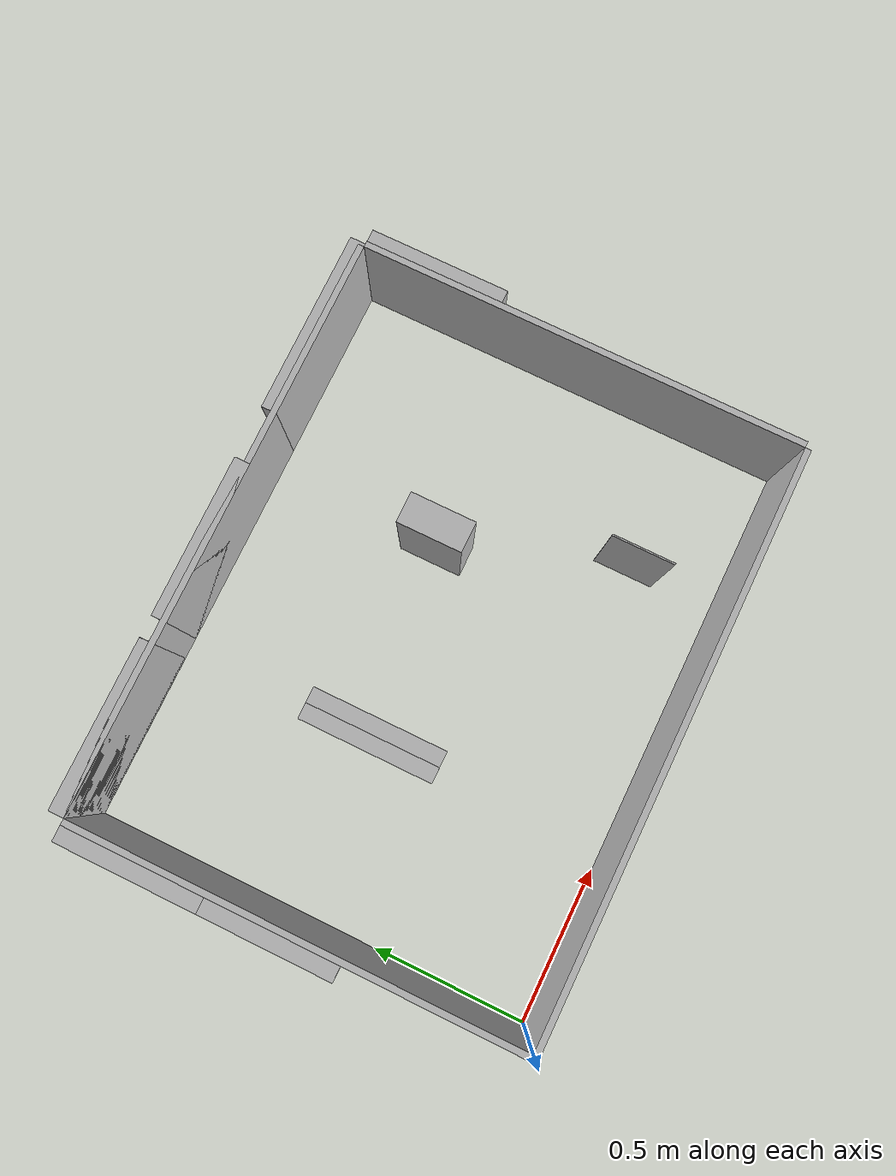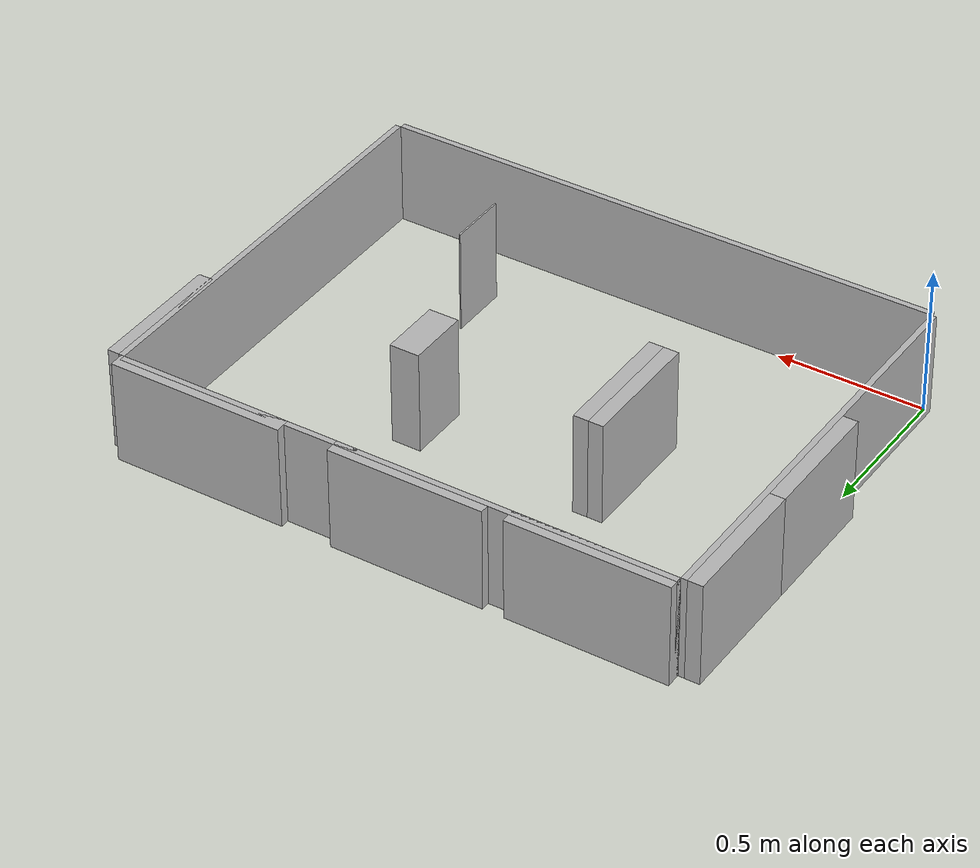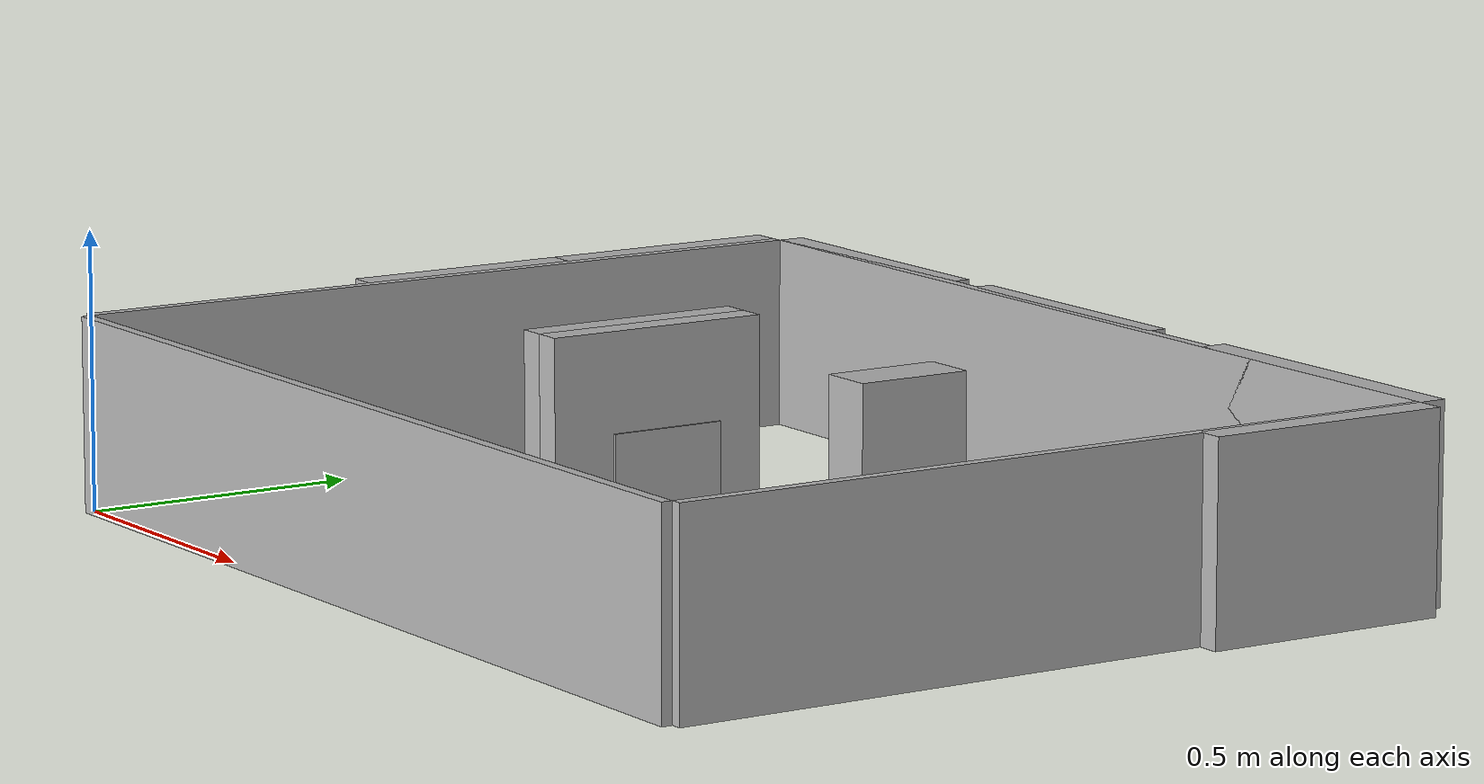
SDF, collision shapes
<?xml version="1.0" ?>
<sdf version="1.8">
  <model name="shop">
    <static>true</static>
    <link name="link">
      <pose>0 0 0 0 0 0</pose>
      <visual name="visual">
        <geometry>
          <mesh>
            <uri>meshes/shop.dae</uri>
            <scale>1.044444 1.021277 1</scale>
          </mesh>
        </geometry>
      </visual>

      <!-- ===== PERIMETER WALLS ===== -->
      <!-- South wall: Y = -0.01, thickness 0.02, length 1.88 -->
      <collision name="wall_south">
        <pose>0.94 -0.01 0.175 0 0 0</pose>
        <geometry>
          <box>
            <size>1.88 0.02 0.35</size>
          </box>
        </geometry>
      </collision>

      <!-- North wall: Y = 1.45, thickness 0.02, length 1.88 -->
      <collision name="wall_north">
        <pose>0.94 1.45 0.175 0 0 0</pose>
        <geometry>
          <box>
            <size>1.88 0.02 0.35</size>
          </box>
        </geometry>
      </collision>

      <!-- West wall: X = -0.01, thickness 0.02, height 1.44 -->
      <collision name="wall_west">
        <pose>-0.01 0.72 0.175 0 0 0</pose>
        <geometry>
          <box>
            <size>0.02 1.44 0.35</size>
          </box>
        </geometry>
      </collision>

      <!-- East wall: X = 1.89, thickness 0.02, height 1.44 -->
      <collision name="wall_east">
        <pose>1.89 0.72 0.175 0 0 0</pose>
        <geometry>
          <box>
            <size>0.02 1.44 0.35</size>
          </box>
        </geometry>
      </collision>

      <!-- ===== NORTH WALL PRODUCTS ===== -->
      <!-- North wall outer face Y=1.46, sections protrude outward (north) -->
      <!-- Seafood: 0~54cm, depth 5cm -->
      <collision name="section_seafood">
        <pose>0.27 1.465 0.175 0 0 0</pose>
        <geometry>
          <box>
            <size>0.54 0.05 0.35</size>
          </box>
        </geometry>
      </collision>

      <!-- Meat: 61~113cm, depth 5cm -->
      <collision name="section_meat">
        <pose>0.87 1.465 0.175 0 0 0</pose>
        <geometry>
          <box>
            <size>0.52 0.05 0.35</size>
          </box>
        </geometry>
      </collision>

      <!-- Vegetable: 130~189cm, depth 5cm -->
      <collision name="section_vegetable">
        <pose>1.595 1.465 0.175 0 0 0</pose>
        <geometry>
          <box>
            <size>0.59 0.05 0.35</size>
          </box>
        </geometry>
      </collision>

      <!-- ===== WEST WALL PRODUCTS ===== -->
      <!-- West wall outer face X=-0.02, sections protrude outward (west) -->
      <!-- Snacks: Y=99~144cm, depth 5cm -->
      <collision name="section_snacks">
        <pose>-0.045 1.215 0.175 0 0 0</pose>
        <geometry>
          <box>
            <size>0.05 0.45 0.35</size>
          </box>
        </geometry>
      </collision>

      <!-- Electronics: Y=57~99cm, depth 5cm -->
      <collision name="section_electronics">
        <pose>-0.045 0.78 0.175 0 0 0</pose>
        <geometry>
          <box>
            <size>0.05 0.42 0.35</size>
          </box>
        </geometry>
      </collision>

      <!-- ===== EAST WALL PRODUCTS ===== -->
      <!-- Restroom: Y=99~144cm, depth 5cm -->
      <collision name="section_restroom">
        <pose>1.915 1.215 0.175 0 0 0</pose>
        <geometry>
          <box>
            <size>0.05 0.45 0.35</size>
          </box>
        </geometry>
      </collision>

      <!-- ===== INTERIOR STRUCTURES ===== -->
      <!-- Divider: X=143.75~144.25cm, Y=20~40cm, thickness 0.5cm -->
      <collision name="divider">
        <pose>1.3975 0.30 0.175 0 0 0</pose>
        <geometry>
          <box>
            <size>0.005 0.20 0.35</size>
          </box>
        </geometry>
      </collision>

      <!-- Bread section: X=53~58cm, Y=56~98cm -->
      <collision name="section_bread">
        <pose>0.555 0.77 0.175 0 0 0</pose>
        <geometry>
          <box>
            <size>0.05 0.42 0.35</size>
          </box>
        </geometry>
      </collision>

      <!-- Processed food section: X=58~63cm, Y=56~98cm -->
      <collision name="section_processed">
        <pose>0.605 0.77 0.175 0 0 0</pose>
        <geometry>
          <box>
            <size>0.05 0.42 0.35</size>
          </box>
        </geometry>
      </collision>

      <!-- Beverage section: X=116~126cm, Y=77~98cm -->
      <collision name="section_beverage">
        <pose>1.21 0.875 0.175 0 0 0</pose>
        <geometry>
          <box>
            <size>0.10 0.21 0.35</size>
          </box>
        </geometry>
      </collision>

      <!-- ===== SOUTH WALL PARKING (no collision, visual only) ===== -->
      <!-- p1: X=58~82cm, Y=0~20cm (no collision, height=0) -->
      <!-- p2: X=82~106cm, Y=0~20cm (no collision, height=0) -->

    </link>
  </model>
</sdf>
